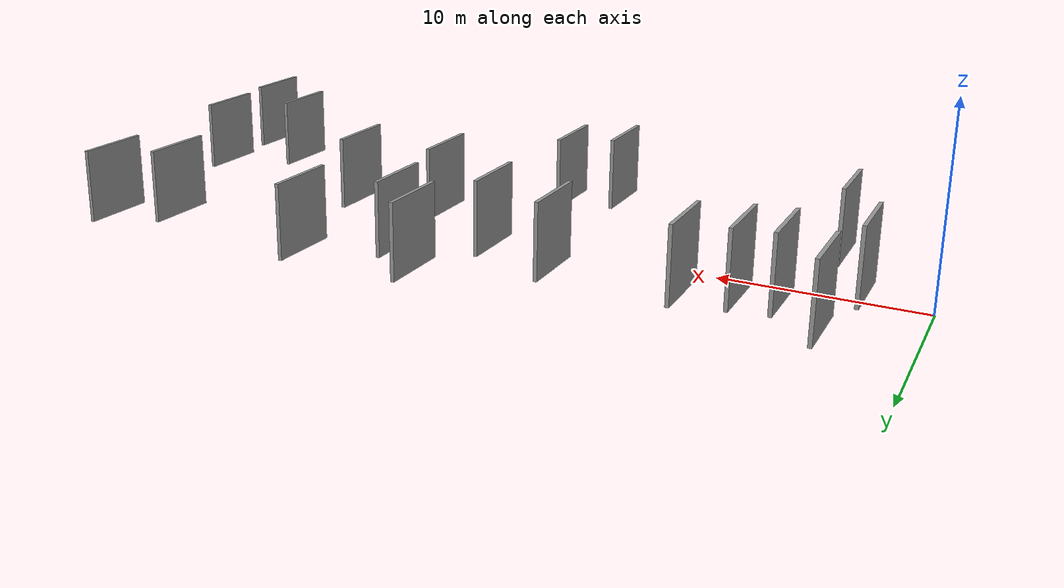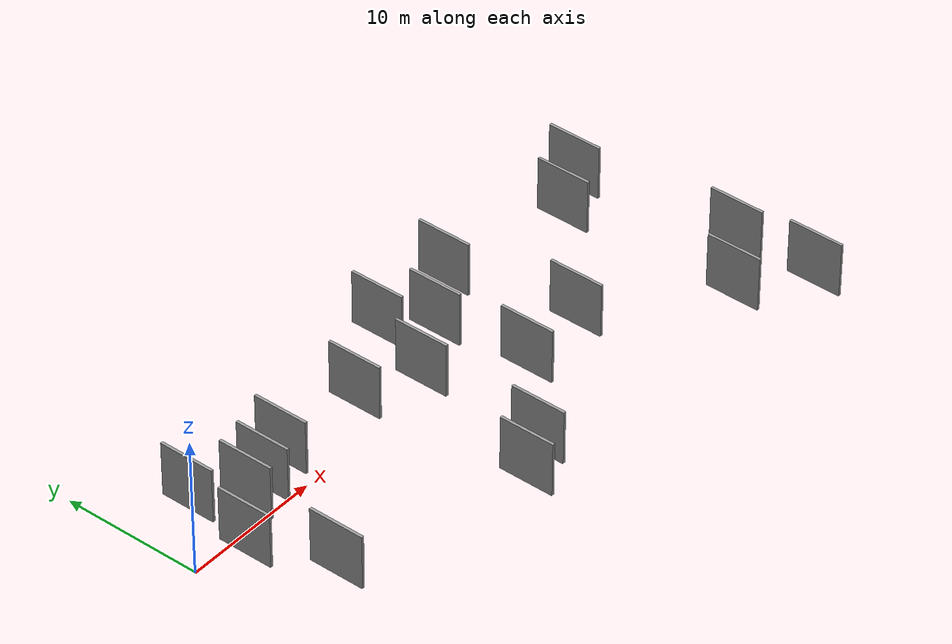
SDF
<sdf version="1.6">
 <world name="default">
  <scene>
   <sky><clouds><speed>12</speed></clouds></sky>
   <ambient>0.4 0.4 0.4 1</ambient>
   <background>0.7 0.7 0.7 1</background>
   <shadows>1</shadows>
  </scene>
  <gravity>0 0 -9.8066</gravity>
  <magnetic_field>6e-06 2.3e-05 -4.2e-05</magnetic_field>
  <physics default="0" name="default_physics" type="ode">
   <ode>
    <solver>
     <type>quick</type>
     <iters>10</iters>
     <sor>1.0</sor>
     <use_dynamic_moi_rescaling>0</use_dynamic_moi_rescaling>
    </solver>
    <constraints>
     <cfm>0</cfm>
     <erp>0.2</erp>
     <contact_max_correcting_vel>100</contact_max_correcting_vel>
     <contact_surface_layer>0.001</contact_surface_layer>
    </constraints>
   </ode>
   <max_step_size>0.004</max_step_size>
   <real_time_factor>1</real_time_factor>
   <real_time_update_rate>250</real_time_update_rate>
  </physics>
  <light name="sun" type="directional">
   <pose>0 0 10 0 0 0</pose>
   <diffuse>0.8 0.8 0.8 1</diffuse>
   <specular>0.2 0.2 0.2 1</specular>
   <attenuation>
    <range>1000</range>
    <constant>0.9</constant>
    <linear>0.01</linear>
    <quadratic>0.001</quadratic>
   </attenuation>
   <direction>-0.5 0.1 -0.9</direction>
  </light>
  <model name="grey_wall_1">
   <static>1</static>
   <pose>23.5020 5.8247 0.0 0.000000 0.000000 1.570796</pose>
   <link name="link">
    <pose>0 0 2.00 0 0 0</pose>
    <collision name="collision"><geometry><box><size>4.00 0.2 4.00</size></box></geometry></collision>
    <visual name="visual">
     <cast_shadows>0</cast_shadows>
     <geometry><box><size>4.00 0.2 4.00</size></box></geometry>
     <material>
      <script>
       <uri>model://grey_wall/materials/scripts</uri>
       <uri>model://grey_wall/materials/textures</uri>
       <name>vrc/grey_wall</name>
      </script>
     </material>
    </visual>
   </link>
  </model>
  <model name="grey_wall_2">
   <static>1</static>
   <pose>25.9427 3.2425 0.0 0.000000 0.000000 1.570796</pose>
   <link name="link">
    <pose>0 0 2.00 0 0 0</pose>
    <collision name="collision"><geometry><box><size>4.00 0.2 4.00</size></box></geometry></collision>
    <visual name="visual">
     <cast_shadows>0</cast_shadows>
     <geometry><box><size>4.00 0.2 4.00</size></box></geometry>
     <material>
      <script>
       <uri>model://grey_wall/materials/scripts</uri>
       <uri>model://grey_wall/materials/textures</uri>
       <name>vrc/grey_wall</name>
      </script>
     </material>
    </visual>
   </link>
  </model>
  <model name="grey_wall_3">
   <static>1</static>
   <pose>44.1683 -6.1671 0.0 0.000000 0.000000 1.570796</pose>
   <link name="link">
    <pose>0 0 2.00 0 0 0</pose>
    <collision name="collision"><geometry><box><size>4.00 0.2 4.00</size></box></geometry></collision>
    <visual name="visual">
     <cast_shadows>0</cast_shadows>
     <geometry><box><size>4.00 0.2 4.00</size></box></geometry>
     <material>
      <script>
       <uri>model://grey_wall/materials/scripts</uri>
       <uri>model://grey_wall/materials/textures</uri>
       <name>vrc/grey_wall</name>
      </script>
     </material>
    </visual>
   </link>
  </model>
  <model name="grey_wall_4">
   <static>1</static>
   <pose>30.0401 5.9075 0.0 0.000000 0.000000 1.570796</pose>
   <link name="link">
    <pose>0 0 2.00 0 0 0</pose>
    <collision name="collision"><geometry><box><size>4.00 0.2 4.00</size></box></geometry></collision>
    <visual name="visual">
     <cast_shadows>0</cast_shadows>
     <geometry><box><size>4.00 0.2 4.00</size></box></geometry>
     <material>
      <script>
       <uri>model://grey_wall/materials/scripts</uri>
       <uri>model://grey_wall/materials/textures</uri>
       <name>vrc/grey_wall</name>
      </script>
     </material>
    </visual>
   </link>
  </model>
  <model name="grey_wall_5">
   <static>1</static>
   <pose>39.6587 4.1006 0.0 0.000000 0.000000 1.570796</pose>
   <link name="link">
    <pose>0 0 2.00 0 0 0</pose>
    <collision name="collision"><geometry><box><size>4.00 0.2 4.00</size></box></geometry></collision>
    <visual name="visual">
     <cast_shadows>0</cast_shadows>
     <geometry><box><size>4.00 0.2 4.00</size></box></geometry>
     <material>
      <script>
       <uri>model://grey_wall/materials/scripts</uri>
       <uri>model://grey_wall/materials/textures</uri>
       <name>vrc/grey_wall</name>
      </script>
     </material>
    </visual>
   </link>
  </model>
  <model name="grey_wall_6">
   <static>1</static>
   <pose>44.6574 -11.9312 0.0 0.000000 0.000000 1.570796</pose>
   <link name="link">
    <pose>0 0 2.00 0 0 0</pose>
    <collision name="collision"><geometry><box><size>4.00 0.2 4.00</size></box></geometry></collision>
    <visual name="visual">
     <cast_shadows>0</cast_shadows>
     <geometry><box><size>4.00 0.2 4.00</size></box></geometry>
     <material>
      <script>
       <uri>model://grey_wall/materials/scripts</uri>
       <uri>model://grey_wall/materials/textures</uri>
       <name>vrc/grey_wall</name>
      </script>
     </material>
    </visual>
   </link>
  </model>
  <model name="grey_wall_7">
   <static>1</static>
   <pose>6.4385 1.6249 0.0 0.000000 0.000000 1.570796</pose>
   <link name="link">
    <pose>0 0 2.00 0 0 0</pose>
    <collision name="collision"><geometry><box><size>4.00 0.2 4.00</size></box></geometry></collision>
    <visual name="visual">
     <cast_shadows>0</cast_shadows>
     <geometry><box><size>4.00 0.2 4.00</size></box></geometry>
     <material>
      <script>
       <uri>model://grey_wall/materials/scripts</uri>
       <uri>model://grey_wall/materials/textures</uri>
       <name>vrc/grey_wall</name>
      </script>
     </material>
    </visual>
   </link>
  </model>
  <model name="grey_wall_8">
   <static>1</static>
   <pose>17.5084 2.5680 0.0 0.000000 0.000000 1.570796</pose>
   <link name="link">
    <pose>0 0 2.00 0 0 0</pose>
    <collision name="collision"><geometry><box><size>4.00 0.2 4.00</size></box></geometry></collision>
    <visual name="visual">
     <cast_shadows>0</cast_shadows>
     <geometry><box><size>4.00 0.2 4.00</size></box></geometry>
     <material>
      <script>
       <uri>model://grey_wall/materials/scripts</uri>
       <uri>model://grey_wall/materials/textures</uri>
       <name>vrc/grey_wall</name>
      </script>
     </material>
    </visual>
   </link>
  </model>
  <model name="grey_wall_9">
   <static>1</static>
   <pose>8.3507 1.9587 0.0 0.000000 0.000000 1.570796</pose>
   <link name="link">
    <pose>0 0 2.00 0 0 0</pose>
    <collision name="collision"><geometry><box><size>4.00 0.2 4.00</size></box></geometry></collision>
    <visual name="visual">
     <cast_shadows>0</cast_shadows>
     <geometry><box><size>4.00 0.2 4.00</size></box></geometry>
     <material>
      <script>
       <uri>model://grey_wall/materials/scripts</uri>
       <uri>model://grey_wall/materials/textures</uri>
       <name>vrc/grey_wall</name>
      </script>
     </material>
    </visual>
   </link>
  </model>
  <model name="grey_wall_10">
   <static>1</static>
   <pose>40.3242 -8.8632 0.0 0.000000 0.000000 1.570796</pose>
   <link name="link">
    <pose>0 0 2.00 0 0 0</pose>
    <collision name="collision"><geometry><box><size>4.00 0.2 4.00</size></box></geometry></collision>
    <visual name="visual">
     <cast_shadows>0</cast_shadows>
     <geometry><box><size>4.00 0.2 4.00</size></box></geometry>
     <material>
      <script>
       <uri>model://grey_wall/materials/scripts</uri>
       <uri>model://grey_wall/materials/textures</uri>
       <name>vrc/grey_wall</name>
      </script>
     </material>
    </visual>
   </link>
  </model>
  <model name="grey_wall_11">
   <static>1</static>
   <pose>18.6393 -9.8626 0.0 0.000000 0.000000 1.570796</pose>
   <link name="link">
    <pose>0 0 2.00 0 0 0</pose>
    <collision name="collision"><geometry><box><size>4.00 0.2 4.00</size></box></geometry></collision>
    <visual name="visual">
     <cast_shadows>0</cast_shadows>
     <geometry><box><size>4.00 0.2 4.00</size></box></geometry>
     <material>
      <script>
       <uri>model://grey_wall/materials/scripts</uri>
       <uri>model://grey_wall/materials/textures</uri>
       <name>vrc/grey_wall</name>
      </script>
     </material>
    </visual>
   </link>
  </model>
  <model name="grey_wall_12">
   <static>1</static>
   <pose>10.8577 2.7048 0.0 0.000000 0.000000 1.570796</pose>
   <link name="link">
    <pose>0 0 2.00 0 0 0</pose>
    <collision name="collision"><geometry><box><size>4.00 0.2 4.00</size></box></geometry></collision>
    <visual name="visual">
     <cast_shadows>0</cast_shadows>
     <geometry><box><size>4.00 0.2 4.00</size></box></geometry>
     <material>
      <script>
       <uri>model://grey_wall/materials/scripts</uri>
       <uri>model://grey_wall/materials/textures</uri>
       <name>vrc/grey_wall</name>
      </script>
     </material>
    </visual>
   </link>
  </model>
  <model name="grey_wall_13">
   <static>1</static>
   <pose>42.8439 5.7170 0.0 0.000000 0.000000 1.570796</pose>
   <link name="link">
    <pose>0 0 2.00 0 0 0</pose>
    <collision name="collision"><geometry><box><size>4.00 0.2 4.00</size></box></geometry></collision>
    <visual name="visual">
     <cast_shadows>0</cast_shadows>
     <geometry><box><size>4.00 0.2 4.00</size></box></geometry>
     <material>
      <script>
       <uri>model://grey_wall/materials/scripts</uri>
       <uri>model://grey_wall/materials/textures</uri>
       <name>vrc/grey_wall</name>
      </script>
     </material>
    </visual>
   </link>
  </model>
  <model name="grey_wall_14">
   <static>1</static>
   <pose>3.2256 -1.1168 0.0 0.000000 0.000000 1.570796</pose>
   <link name="link">
    <pose>0 0 2.00 0 0 0</pose>
    <collision name="collision"><geometry><box><size>4.00 0.2 4.00</size></box></geometry></collision>
    <visual name="visual">
     <cast_shadows>0</cast_shadows>
     <geometry><box><size>4.00 0.2 4.00</size></box></geometry>
     <material>
      <script>
       <uri>model://grey_wall/materials/scripts</uri>
       <uri>model://grey_wall/materials/textures</uri>
       <name>vrc/grey_wall</name>
      </script>
     </material>
    </visual>
   </link>
  </model>
  <model name="grey_wall_15">
   <static>1</static>
   <pose>26.7758 -3.3444 0.0 0.000000 0.000000 1.570796</pose>
   <link name="link">
    <pose>0 0 2.00 0 0 0</pose>
    <collision name="collision"><geometry><box><size>4.00 0.2 4.00</size></box></geometry></collision>
    <visual name="visual">
     <cast_shadows>0</cast_shadows>
     <geometry><box><size>4.00 0.2 4.00</size></box></geometry>
     <material>
      <script>
       <uri>model://grey_wall/materials/scripts</uri>
       <uri>model://grey_wall/materials/textures</uri>
       <name>vrc/grey_wall</name>
      </script>
     </material>
    </visual>
   </link>
  </model>
  <model name="grey_wall_16">
   <static>1</static>
   <pose>4.0781 4.1308 0.0 0.000000 0.000000 1.570796</pose>
   <link name="link">
    <pose>0 0 2.00 0 0 0</pose>
    <collision name="collision"><geometry><box><size>4.00 0.2 4.00</size></box></geometry></collision>
    <visual name="visual">
     <cast_shadows>0</cast_shadows>
     <geometry><box><size>4.00 0.2 4.00</size></box></geometry>
     <material>
      <script>
       <uri>model://grey_wall/materials/scripts</uri>
       <uri>model://grey_wall/materials/textures</uri>
       <name>vrc/grey_wall</name>
      </script>
     </material>
    </visual>
   </link>
  </model>
  <model name="grey_wall_17">
   <static>1</static>
   <pose>32.1266 -2.9166 0.0 0.000000 0.000000 1.570796</pose>
   <link name="link">
    <pose>0 0 2.00 0 0 0</pose>
    <collision name="collision"><geometry><box><size>4.00 0.2 4.00</size></box></geometry></collision>
    <visual name="visual">
     <cast_shadows>0</cast_shadows>
     <geometry><box><size>4.00 0.2 4.00</size></box></geometry>
     <material>
      <script>
       <uri>model://grey_wall/materials/scripts</uri>
       <uri>model://grey_wall/materials/textures</uri>
       <name>vrc/grey_wall</name>
      </script>
     </material>
    </visual>
   </link>
  </model>
  <model name="grey_wall_18">
   <static>1</static>
   <pose>21.6810 0.7908 0.0 0.000000 0.000000 1.570796</pose>
   <link name="link">
    <pose>0 0 2.00 0 0 0</pose>
    <collision name="collision"><geometry><box><size>4.00 0.2 4.00</size></box></geometry></collision>
    <visual name="visual">
     <cast_shadows>0</cast_shadows>
     <geometry><box><size>4.00 0.2 4.00</size></box></geometry>
     <material>
      <script>
       <uri>model://grey_wall/materials/scripts</uri>
       <uri>model://grey_wall/materials/textures</uri>
       <name>vrc/grey_wall</name>
      </script>
     </material>
    </visual>
   </link>
  </model>
  <model name="grey_wall_19">
   <static>1</static>
   <pose>5.2329 -6.4461 0.0 0.000000 0.000000 1.570796</pose>
   <link name="link">
    <pose>0 0 2.00 0 0 0</pose>
    <collision name="collision"><geometry><box><size>4.00 0.2 4.00</size></box></geometry></collision>
    <visual name="visual">
     <cast_shadows>0</cast_shadows>
     <geometry><box><size>4.00 0.2 4.00</size></box></geometry>
     <material>
      <script>
       <uri>model://grey_wall/materials/scripts</uri>
       <uri>model://grey_wall/materials/textures</uri>
       <name>vrc/grey_wall</name>
      </script>
     </material>
    </visual>
   </link>
  </model>
  <model name="grey_wall_20">
   <static>1</static>
   <pose>21.3211 -8.5732 0.0 0.000000 0.000000 1.570796</pose>
   <link name="link">
    <pose>0 0 2.00 0 0 0</pose>
    <collision name="collision"><geometry><box><size>4.00 0.2 4.00</size></box></geometry></collision>
    <visual name="visual">
     <cast_shadows>0</cast_shadows>
     <geometry><box><size>4.00 0.2 4.00</size></box></geometry>
     <material>
      <script>
       <uri>model://grey_wall/materials/scripts</uri>
       <uri>model://grey_wall/materials/textures</uri>
       <name>vrc/grey_wall</name>
      </script>
     </material>
    </visual>
   </link>
  </model>
 </world>
</sdf>
